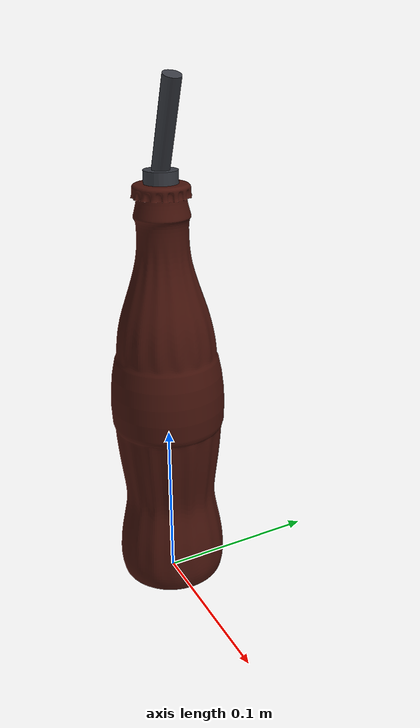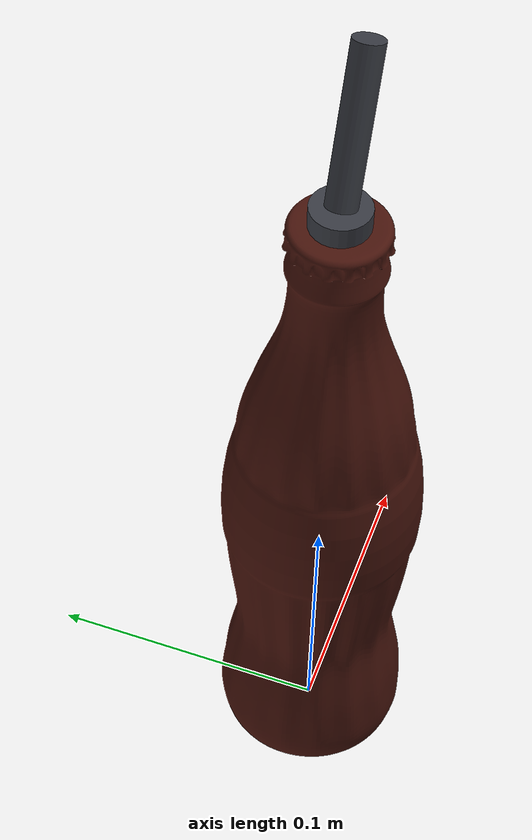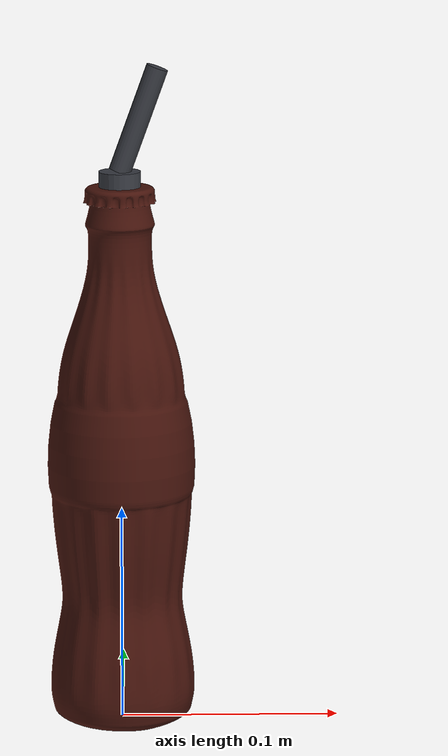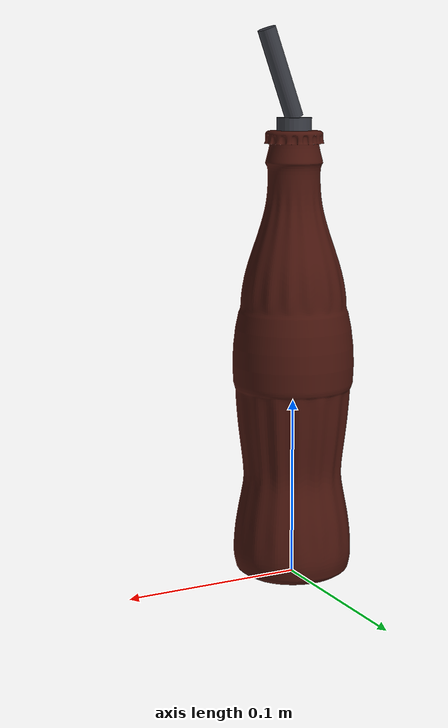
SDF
<?xml version="1.0" ?>
<sdf version="1.9">
  <model name="cola_bottle">
    <!-- Link origin sits at the center of the bottle's base, same convention
         as jack_daniels_bottle, so placing the model's pose z at table height
         puts the bottle exactly on the surface. -->
    <link name="cola_link">
      <inertial>
        <pose>0 0 0.11 0 0 0</pose>
        <mass>1.05</mass>
        <inertia>
          <ixx>0.005765</ixx>
          <iyy>0.005765</iyy>
          <izz>0.000593</izz>
          <ixy>0</ixy>
          <ixz>0</ixz>
          <iyz>0</iyz>
        </inertia>
      </inertial>

      <velocity_decay>
        <linear>0.05</linear>
        <angular>0.30</angular>
      </velocity_decay>

      <visual name="cola_visual">
        <pose>0 0 0 1.570796 0 0</pose>
        <geometry>
          <mesh>
            <uri>meshes/cola_bottle.obj</uri>
            <scale>0.065074 0.065074 0.065074</scale>
          </mesh>
        </geometry>
        <material>
          <ambient>0.06 0.02 0.01 1</ambient>
          <diffuse>0.28 0.08 0.05 1</diffuse>
          <specular>0.5 0.5 0.5 1</specular>
          <emissive>0 0 0 1</emissive>
        </material>
      </visual>

      <collision name="cola_base_collision">
        <pose>0 0 0.0200 0 0 0</pose>
        <geometry>
          <cylinder>
            <radius>0.0333</radius>
            <length>0.040</length>
          </cylinder>
        </geometry>
        <surface>
          <friction>
            <ode>
              <mu>0.9</mu>
              <mu2>0.9</mu2>
            </ode>
          </friction>
        </surface>
      </collision>

      <collision name="cola_waist_collision">
        <pose>0 0 0.0600 0 0 0</pose>
        <geometry>
          <cylinder>
            <radius>0.0298</radius>
            <length>0.040</length>
          </cylinder>
        </geometry>
        <surface>
          <friction>
            <ode>
              <mu>0.9</mu>
              <mu2>0.9</mu2>
            </ode>
          </friction>
        </surface>
      </collision>

      <collision name="cola_bulge_collision">
        <pose>0 0 0.1150 0 0 0</pose>
        <geometry>
          <cylinder>
            <radius>0.0336</radius>
            <length>0.070</length>
          </cylinder>
        </geometry>
        <surface>
          <friction>
            <ode>
              <mu>0.9</mu>
              <mu2>0.9</mu2>
            </ode>
          </friction>
        </surface>
      </collision>

      <collision name="cola_shoulder_collision">
        <pose>0 0 0.1725 0 0 0</pose>
        <geometry>
          <cylinder>
            <radius>0.0250</radius>
            <length>0.045</length>
          </cylinder>
        </geometry>
        <surface>
          <friction>
            <ode>
              <mu>0.9</mu>
              <mu2>0.9</mu2>
            </ode>
          </friction>
        </surface>
      </collision>

      <collision name="cola_neck_collision">
        <pose>0 0 0.2225 0 0 0</pose>
        <geometry>
          <cylinder>
            <radius>0.0165</radius>
            <length>0.055</length>
          </cylinder>
        </geometry>
        <surface>
          <friction>
            <ode>
              <mu>0.9</mu>
              <mu2>0.9</mu2>
            </ode>
          </friction>
        </surface>
      </collision>

      <collision name="cola_collar_collision">
        <pose>0 0 0.2410 0 0 0</pose>
        <geometry>
          <cylinder>
            <radius>0.0210</radius>
            <length>0.008</length>
          </cylinder>
        </geometry>
        <surface>
          <friction>
            <ode>
              <mu>0.9</mu>
              <mu2>0.9</mu2>
            </ode>
          </friction>
        </surface>
      </collision>

      <visual name="cola_pourer_body_visual">
        <pose>0 0 0.2460 0 0 0</pose>
        <geometry><cylinder><radius>0.0095</radius><length>0.022</length></cylinder></geometry>
        <material>
          <ambient>0.05 0.05 0.06 1</ambient>
          <diffuse>0.22 0.23 0.26 1</diffuse>
          <specular>0.7 0.7 0.7 1</specular>
        </material>
      </visual>
      <visual name="cola_pourer_spout_visual">
        <pose>0.0086 0 0.2805 0 0.349066 0</pose>
        <geometry><cylinder><radius>0.005</radius><length>0.050</length></cylinder></geometry>
        <material>
          <ambient>0.05 0.05 0.06 1</ambient>
          <diffuse>0.22 0.23 0.26 1</diffuse>
          <specular>0.7 0.7 0.7 1</specular>
        </material>
      </visual>

      <collision name="cola_pourer_body_collision">
        <pose>0 0 0.2460 0 0 0</pose>
        <geometry><cylinder><radius>0.0095</radius><length>0.022</length></cylinder></geometry>
        <surface><friction><ode><mu>0.9</mu><mu2>0.9</mu2></ode></friction></surface>
      </collision>
      <collision name="cola_pourer_spout_collision">
        <pose>0.0086 0 0.2805 0 0.349066 0</pose>
        <geometry><cylinder><radius>0.005</radius><length>0.050</length></cylinder></geometry>
        <surface><friction><ode><mu>0.9</mu><mu2>0.9</mu2></ode></friction></surface>
      </collision>
    </link>
  </model>
</sdf>
